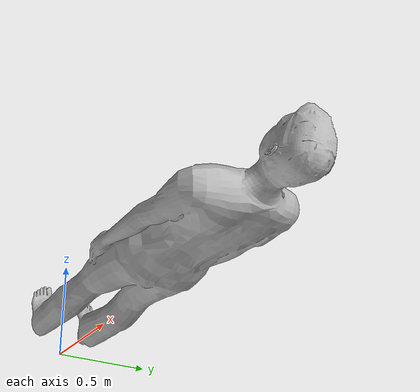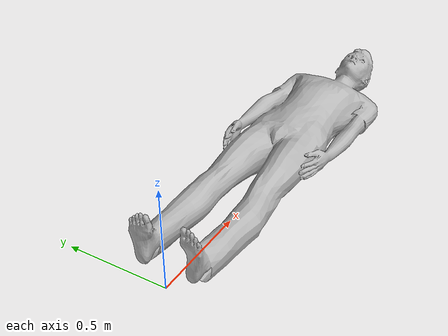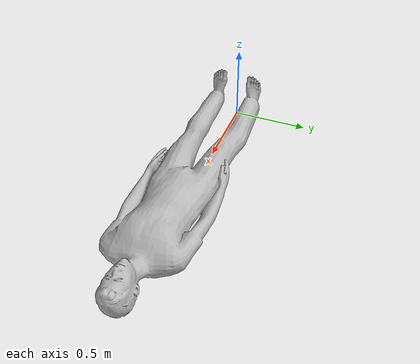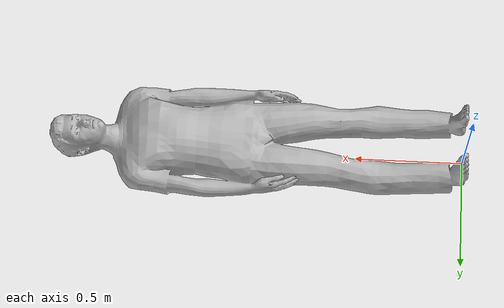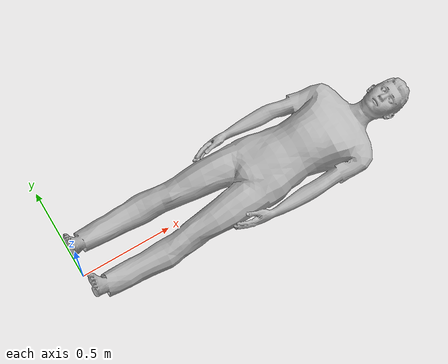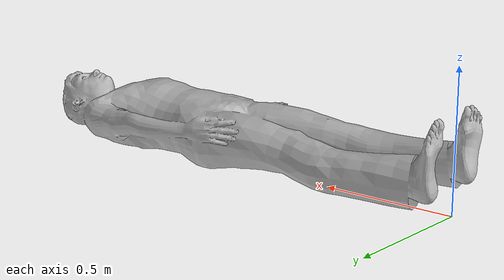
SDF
<?xml version="1.0" ?>
<sdf version="1.5">
  <model name="person_standing">
    <link name="link">
      <inertial>
        <pose>0 -0.1 0.95 0 0 0</pose>
        <mass>80.0</mass>
        <inertia>
          <ixx>24.88</ixx>
          <ixy>0</ixy>
          <ixz>0</ixz>
          <iyy>25.73</iyy>
          <iyz>0</iyz>
          <izz>2.48</izz>
        </inertia>
      </inertial>

      <!-- Ajustar la colisión inferior -->
      <collision name="bottom">
        <!-- Elevar la colisión para evitar que traspase el suelo -->
        <pose>0 -0.1 0.05 0 0 0</pose>
        <geometry>
          <box>
            <!-- Aumentar el tamaño de la colisión en Z -->
            <size>0.5 0.35 0.1</size>
          </box>
        </geometry>
      </collision>

      <!-- Ajustar la colisión principal del cuerpo -->
      <collision name="person">
        <!-- Elevar ligeramente la posición del modelo en Z -->
        <pose>0 -0.1 0.1 0 0 0</pose>
        <geometry>
          <mesh>
            <uri>model://person_standing/meshes/standing.dae</uri>
          </mesh>
        </geometry>
      </collision>

      <!-- Ajustar el visual del modelo -->
      <visual name="visual">
        <!-- Asegurar que el visual esté correctamente alineado -->
        <pose>0 0 0.1 1.57 3.14 1.57</pose>
        <geometry>
          <mesh>
            <uri>model://person_standing/meshes/standing.dae</uri>
          </mesh>
        </geometry>
      </visual>
    </link>
  </model>
</sdf>
